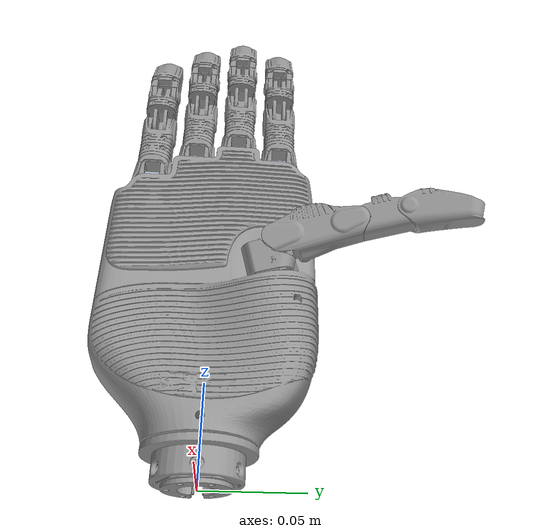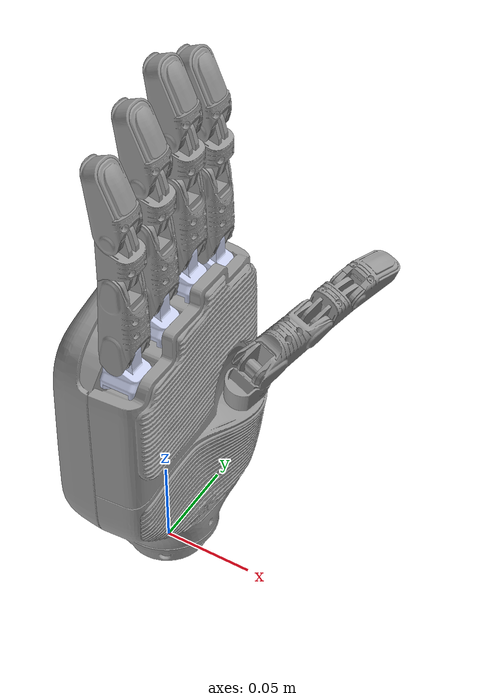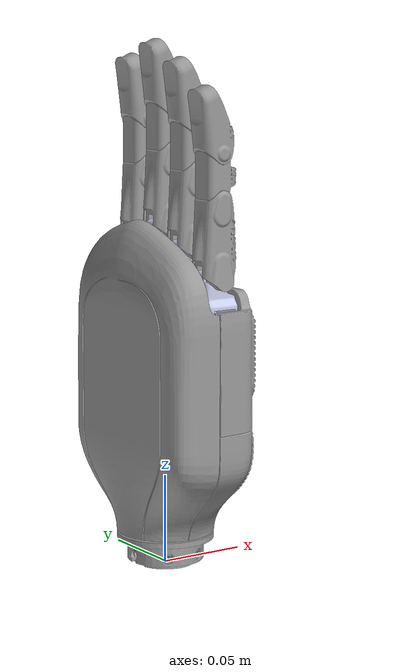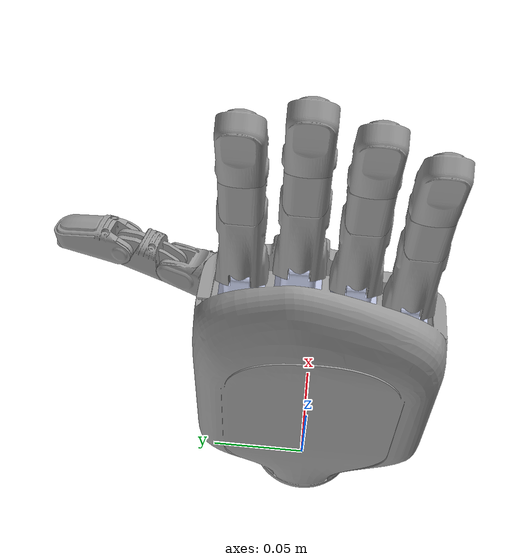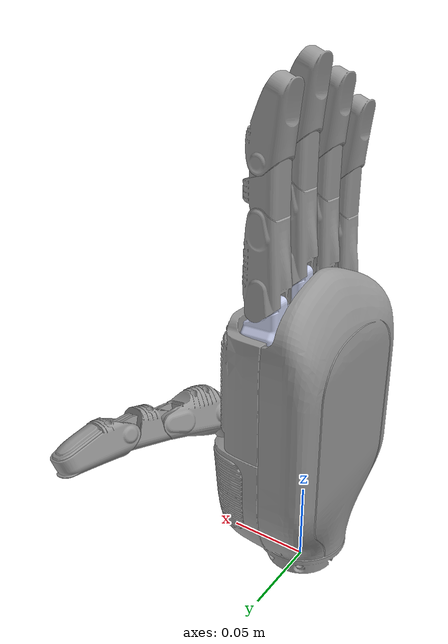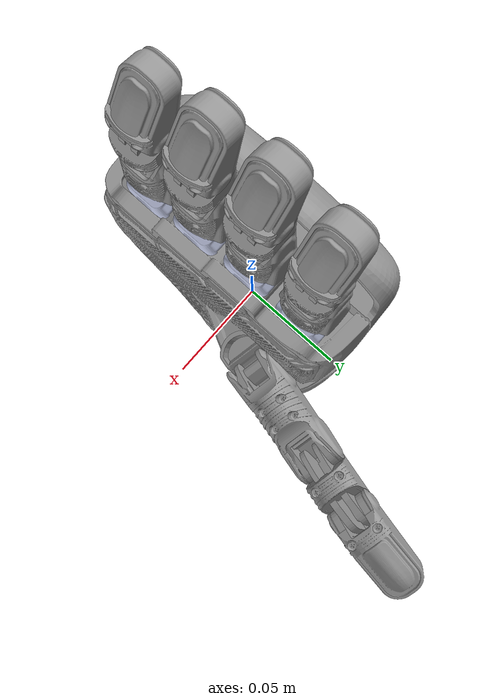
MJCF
<?xml version="1.0" encoding="utf-8"?>
<mujoco model="dexhand021_right_sim">
  <compiler angle="radian" meshdir="../../assets" autolimits="true"/>
  <size nkey="5"/>
  <option integrator="implicitfast" timestep="0.01" cone="elliptic" impratio="10"/>
  <default>
    <joint damping="0.05" armature="0.0002" frictionloss="0.01"/>
    <geom condim="3" solref="0.01 1" solimp="0.9 0.99 0.001" friction="1 0.005 0.0001"/>
    <equality solref="0.01 1" solimp="0.9 0.99 0.001"/>
  </default>
  <asset>
    <mesh name="rh_base" file="robot/dexhand021/right_hand_base.STL"/>
    <mesh name="rh_thbase" file="robot/dexhand021/r_f_link1_1.STL"/>
    <mesh name="rh_thproximal" file="robot/dexhand021/r_f_link1_2.STL"/>
    <mesh name="rh_thmiddle" file="robot/dexhand021/r_f_link1_3.STL"/>
    <mesh name="rh_thdistal" file="robot/dexhand021/r_f_link1_4.STL"/>
    <mesh name="rh_ffbase" file="robot/dexhand021/r_f_link2_1.STL"/>
    <mesh name="rh_ffproximal" file="robot/dexhand021/r_f_link2_2.STL"/>
    <mesh name="rh_ffmiddle" file="robot/dexhand021/r_f_link2_3.STL"/>
    <mesh name="rh_ffdistal" file="robot/dexhand021/r_f_link2_4.STL"/>
    <mesh name="rh_mfbase" file="robot/dexhand021/r_f_link3_1.STL"/>
    <mesh name="rh_mfproximal" file="robot/dexhand021/r_f_link3_2.STL"/>
    <mesh name="rh_mfmiddle" file="robot/dexhand021/r_f_link3_3.STL"/>
    <mesh name="rh_mfdistal" file="robot/dexhand021/r_f_link3_4.STL"/>
    <mesh name="rh_rfbase" file="robot/dexhand021/r_f_link4_1.STL"/>
    <mesh name="rh_rfproximal" file="robot/dexhand021/r_f_link4_2.STL"/>
    <mesh name="rh_rfmiddle" file="robot/dexhand021/r_f_link4_3.STL"/>
    <mesh name="rh_rfdistal" file="robot/dexhand021/r_f_link4_4.STL"/>
    <mesh name="rh_lfbase" file="robot/dexhand021/r_f_link5_1.STL"/>
    <mesh name="rh_lfproximal" file="robot/dexhand021/r_f_link5_2.STL"/>
    <mesh name="rh_lfmiddle" file="robot/dexhand021/r_f_link5_3.STL"/>
    <mesh name="rh_lfdistal" file="robot/dexhand021/r_f_link5_4.STL"/>

    <material name="shell-plastic" rgba="0.6 0.6 0.6 1" />
    <material name="joint-metal" rgba="0.79216 0.81961 0.93333 1" />
  </asset>
  <worldbody>
    <body name="rh_base">
      <geom type="mesh" contype="0" conaffinity="0" group="1" density="0" material="shell-plastic" mesh="rh_base"/>
      <body name="rh_thbase" pos="0.032783 0.023781 0.11211" quat="0.151551 -0.775385 -0.612635 0.0221215">
        <inertial pos="0.0019855 -0.00034962 0.013484" quat="0.71629 -0.0780372 -0.0535872 0.691351" mass="0.0055264" diaginertia="5.52348e-07 4.77971e-07 2.4806e-07"/>
        <joint name="rh_thj1" pos="0 0 0" axis="0 0 1" range="0 2.2" actuatorfrcrange="-10 10"/>
        <geom type="mesh" contype="0" conaffinity="0" group="1" density="0" material="shell-plastic" mesh="rh_thbase"/>
        <body name="rh_thproximal" pos="0.0083307 0 0" quat="0.707105 -0.707108 0 0">
          <inertial pos="0.021437 0.00017315 -0.0012982" quat="0.0127346 0.706496 -0.016911 0.7074" mass="0.012462" diaginertia="2.145e-06 2.07718e-06 7.76292e-07"/>
          <joint name="rh_thj2" pos="0 0 0" axis="0 0 1" range="0 1.3" actuatorfrcrange="-10 10"/>
          <geom type="mesh" contype="0" conaffinity="0" group="1" density="0" material="shell-plastic" mesh="rh_thproximal"/>
          <body name="rh_thmiddle" pos="0.043 0 0">
            <inertial pos="0.013455 -0.00070242 -0.0012928" quat="0.0204223 0.706783 -0.0204207 0.70684" mass="0.005726" diaginertia="4.7655e-07 4.47482e-07 2.54788e-07"/>
            <joint name="rh_thj3" pos="0 0 0" axis="0 0 1" range="0 1.3" actuatorfrcrange="-10 10"/>
            <geom type="mesh" contype="0" conaffinity="0" group="1" density="0" material="shell-plastic" mesh="rh_thmiddle"/>
            <body name="rh_thdistal" pos="0.025 0 0">
              <joint name="rh_thj4" pos="0 0 0" axis="0 0 1" range="0 1.3" actuatorfrcrange="-10 10"/>
              <geom type="mesh" contype="0" conaffinity="0" group="1" density="0" material="shell-plastic" mesh="rh_thdistal"/>
              <geom name="rh_thdistal_col" type="capsule" rgba="0 0 1.0 1" contype="1" conaffinity="1" group="3" size="0.0095" fromto="0.0 0 -0.001 0.027 -0.007 -0.001" condim="4"/>
            </body>
            <geom name="rh_thmiddle_col" type="capsule" rgba="0 0 1.0 1" contype="1" conaffinity="1" group="3" size="0.007" fromto="0.0125 0.003 -0.0045 0.0125 0.003 0.0023"/>
          </body>
          <geom name="rh_thproximal_col" type="capsule" rgba="0 0 1.0 1" contype="1" conaffinity="1" group="3" size="0.0095" fromto="0.0 0 0 0.03 0 -0.002"/>
        </body>
      </body>
      <body name="rh_ffbase" pos="0.006966 0.034912 0.1644" quat="0.707105 0 -0.707108 0">
        <inertial pos="0.007003 2.619e-09 0.00096933" quat="0.601863 0.371162 0.371162 0.601863" mass="0.0051273" diaginertia="3.9879e-07 3.4058e-07 2.5589e-07"/>
        <joint name="rh_ffj1" pos="0 0 0" axis="0 0 1" range="0 0.3" actuatorfrcrange="-10 10"/>
        <geom type="mesh" contype="0" conaffinity="0" group="1" density="0" material="joint-metal" mesh="rh_ffbase"/>
        <body name="rh_ffproximal" pos="0.017 0 0" quat="0.707105 -0.707108 0 0">
          <inertial pos="0.02116 -0.00059146 -2.1984e-06" quat="0.507863 0.503147 0.496172 0.492678" mass="0.011802" diaginertia="2.07728e-06 2.0592e-06 6.94909e-07"/>
          <joint name="rh_ffj2" pos="0 0 0" axis="0 0 1" range="0 1.3" actuatorfrcrange="-10 10"/>
          <geom type="mesh" contype="0" conaffinity="0" group="1" density="0" material="shell-plastic" mesh="rh_ffproximal"/>
          <body name="rh_ffmiddle" pos="0.043 0 0">
            <inertial pos="0.013455 -0.00070241 -3.5721e-07" quat="0.0204051 0.706783 -0.0204379 0.70684" mass="0.005726" diaginertia="4.7655e-07 4.47482e-07 2.54788e-07"/>
            <joint name="rh_ffj3" pos="0 0 0" axis="0 0 1" range="0 1.3" actuatorfrcrange="-10 10"/>
            <geom type="mesh" contype="0" conaffinity="0" group="1" density="0" material="shell-plastic" mesh="rh_ffmiddle"/>
            <body name="rh_ffdistal" pos="0.025 0 0">
              <joint name="rh_ffj4" pos="0 0 0" axis="0 0 1" range="0 1.3" actuatorfrcrange="-10 10"/>
              <geom type="mesh" contype="0" conaffinity="0" group="1" density="0" material="shell-plastic" mesh="rh_ffdistal"/>
              <geom name="rh_ffdistal_col" type="capsule" rgba="0 0 1.0 1" contype="1" conaffinity="1" group="3" size="0.0095" fromto="0.0 0 0 0.026 -0.007 0" condim="4"/>
            </body>
            <geom name="rh_ffmiddle_col" type="capsule" rgba="0 0 1.0 1" contype="1" conaffinity="1" group="3" size="0.007" fromto="0.012 0.003 -0.0035 0.012 0.003 0.0035"/>
          </body>
          <geom name="rh_ffproximal_col" type="capsule" rgba="0 0 1.0 1" contype="1" conaffinity="1" group="3" size="0.0095" fromto="0.005 0 0 0.03 0 0"/>
        </body>
      </body>
      <body name="rh_mfbase" pos="0.006966 0.010612 0.1734" quat="0.707105 0 -0.707108 0">
        <inertial pos="0.007003 2.619e-09 0.00096932" quat="0.601863 0.371162 0.371162 0.601863" mass="0.0051273" diaginertia="3.9879e-07 3.4058e-07 2.5589e-07"/>
        <geom type="mesh" contype="0" conaffinity="0" group="1" density="0" material="joint-metal" mesh="rh_mfbase"/>
        <body name="rh_mfproximal" pos="0.017 0 0" quat="0.707105 -0.707108 0 0">
          <inertial pos="0.02116 -0.00059146 -2.1984e-06" quat="0.507863 0.503147 0.496172 0.492678" mass="0.011802" diaginertia="2.07728e-06 2.0592e-06 6.94909e-07"/>
          <joint name="rh_mfj2" pos="0 0 0" axis="0 0 1" range="0 1.3" actuatorfrcrange="-10 10"/>
          <geom type="mesh" contype="0" conaffinity="0" group="1" density="0" material="shell-plastic" mesh="rh_mfproximal"/>
          <body name="rh_mfmiddle" pos="0.043 0 0">
            <inertial pos="0.013455 -0.00070241 -3.5721e-07" quat="0.0204051 0.706783 -0.0204379 0.70684" mass="0.005726" diaginertia="4.7655e-07 4.47482e-07 2.54788e-07"/>
            <joint name="rh_mfj3" pos="0 0 0" axis="0 0 1" range="0 1.3" actuatorfrcrange="-10 10"/>
            <geom type="mesh" contype="0" conaffinity="0" group="1" density="0" material="shell-plastic" mesh="rh_mfmiddle"/>
            <body name="rh_mfdistal" pos="0.025 0 0">
              <joint name="rh_mfj4" pos="0 0 0" axis="0 0 1" range="0 1.3" actuatorfrcrange="-10 10"/>
              <geom type="mesh" contype="0" conaffinity="0" group="1" density="0" material="shell-plastic" mesh="rh_mfdistal"/>
              <geom name="rh_mfdistal_col" type="capsule" rgba="0 0 1.0 1" contype="1" conaffinity="1" group="3" size="0.0095" fromto="0.0 0 0 0.026 -0.007 0" condim="4"/>
            </body>
            <geom name="rh_mfmiddle_col" type="capsule" rgba="0 0 1.0 1" contype="1" conaffinity="1" group="3" size="0.007" fromto="0.012 0.003 -0.0035 0.012 0.003 0.0035"/>
          </body>
          <geom name="rh_mfproximal_col" type="capsule" rgba="0 0 1.0 1" contype="1" conaffinity="1" group="3" size="0.0095" fromto="0.005 0 0 0.03 0 0"/>
        </body>
      </body>
      <body name="rh_rfbase" pos="0.006966 -0.013688 0.1644" quat="-2.59734e-06 0.707105 2.59735e-06 0.707108">
        <inertial pos="0.007003 -2.619e-09 -0.00096933" quat="0.371162 0.601863 0.601863 0.371162" mass="0.0051273" diaginertia="3.9879e-07 3.4058e-07 2.5589e-07"/>
        <joint name="rh_rfj1" pos="0 0 0" axis="0 0 1" range="0 0.3" actuatorfrcrange="-10 10"/>
        <geom type="mesh" contype="0" conaffinity="0" group="1" density="0" material="joint-metal" mesh="rh_rfbase"/>
        <body name="rh_rfproximal" pos="0.017 0 0" quat="0.707105 0.707108 0 0">
          <inertial pos="0.02116 -0.00059146 -2.1984e-06" quat="0.507863 0.503147 0.496172 0.492678" mass="0.011802" diaginertia="2.07728e-06 2.0592e-06 6.94909e-07"/>
          <joint name="rh_rfj2" pos="0 0 0" axis="0 0 1" range="0 1.3" actuatorfrcrange="-10 10"/>
          <geom type="mesh" contype="0" conaffinity="0" group="1" density="0" material="shell-plastic" mesh="rh_rfproximal"/>
          <body name="rh_rfmiddle" pos="0.043 0 0">
            <inertial pos="0.013455 -0.00070241 -3.572e-07" quat="0.0204051 0.706783 -0.0204379 0.70684" mass="0.005726" diaginertia="4.7655e-07 4.47482e-07 2.54788e-07"/>
            <joint name="rh_rfj3" pos="0 0 0" axis="0 0 1" range="0 1.3" actuatorfrcrange="-10 10"/>
            <geom type="mesh" contype="0" conaffinity="0" group="1" density="0" material="shell-plastic" mesh="rh_rfmiddle"/>
            <body name="rh_rfdistal" pos="0.025 0 0">
              <joint name="rh_rfj4" pos="0 0 0" axis="0 0 1" range="0 1.3" actuatorfrcrange="-10 10"/>
              <geom type="mesh" contype="0" conaffinity="0" group="1" density="0" material="shell-plastic" mesh="rh_rfdistal"/>
              <geom name="rh_rfdistal_col" type="capsule" rgba="0 0 1.0 1" contype="1" conaffinity="1" group="3" size="0.0095" fromto="0.0 0 0 0.026 -0.007 0" condim="4"/>
            </body>
            <geom name="rh_rfmiddle_col" type="capsule" rgba="0 0 1.0 1" contype="1" conaffinity="1" group="3" size="0.007" fromto="0.012 0.003 -0.0035 0.012 0.003 0.0035"/>
          </body>
          <geom name="rh_rfproximal_col" type="capsule" rgba="0 0 1.0 1" contype="1" conaffinity="1" group="3" size="0.0095" fromto="0.005 0 0 0.03 0 0"/>
        </body>
      </body>
      <body name="rh_lfbase" pos="0.006966 -0.037988 0.1504" quat="-2.59734e-06 0.707105 2.59735e-06 0.707108">
        <inertial pos="0.0080017 1.8833e-05 -0.0015869" quat="0.366604 0.60097 0.60931 0.364936" mass="0.003769" diaginertia="3.9885e-07 3.46938e-07 2.19942e-07"/>
        <joint name="rh_lfj1" pos="0 0 0" axis="0 0 1" range="0 0.6" actuatorfrcrange="-10 10"/>
        <geom type="mesh" contype="0" conaffinity="0" group="1" density="0" material="joint-metal" mesh="rh_lfbase"/>
        <body name="rh_lfproximal" pos="0.017 0 0" quat="0.707105 0.707108 0 0">
          <inertial pos="0.02116 -0.00059146 -2.1978e-06" quat="0.507864 0.503146 0.496173 0.492678" mass="0.011802" diaginertia="2.07728e-06 2.0592e-06 6.94909e-07"/>
          <joint name="rh_lfj2" pos="0 0 0" axis="0 0 1" range="0 1.3" actuatorfrcrange="-10 10"/>
          <geom type="mesh" contype="0" conaffinity="0" group="1" density="0" material="shell-plastic" mesh="rh_lfproximal"/>
          <body name="rh_lfmiddle" pos="0.043 0 0">
            <inertial pos="0.013455 -0.00070241 -3.5727e-07" quat="0.0204052 0.706783 -0.0204379 0.70684" mass="0.005726" diaginertia="4.7655e-07 4.47482e-07 2.54788e-07"/>
            <joint name="rh_lfj3" pos="0 0 0" axis="0 0 1" range="0 1.3" actuatorfrcrange="-10 10"/>
            <geom type="mesh" contype="0" conaffinity="0" group="1" density="0" material="shell-plastic" mesh="rh_lfmiddle"/>
            <body name="rh_lfdistal" pos="0.025 0 0">
              <joint name="rh_lfj4" pos="0 0 0" axis="0 0 1" range="0 1.3" actuatorfrcrange="-10 10"/>
              <geom type="mesh" contype="0" conaffinity="0" group="1" density="0" material="shell-plastic" mesh="rh_lfdistal"/>
              <geom name="rh_lfdistal_col" type="capsule" rgba="0 0 1.0 1" contype="1" conaffinity="1" group="3" size="0.0095" fromto="0.0 0 0 0.026 -0.007 0" condim="4"/>
            </body>
            <geom name="rh_lfmiddle_col" type="capsule" rgba="0 0 1.0 1" contype="1" conaffinity="1" group="3" size="0.007" fromto="0.012 0.003 -0.0035 0.012 0.003 0.0035"/>
          </body>
          <geom name="rh_lfproximal_col" type="capsule" rgba="0 0 1.0 1" contype="1" conaffinity="1" group="3" size="0.0095" fromto="0.005 0 0 0.03 0 0"/>
        </body>
      </body>
      <geom name="rh_base_col" type="box" contype="1" conaffinity="1" group="3" size="0.0273 0.05 0.05" pos="-0.0022 0 0.11" rgba="0 0 1.0 1"/>
      <geom name="rh_base_pad1" type="box" contype="1" conaffinity="1" group="3" size="0.0273 0.038 0.01" pos="-0.0022 0.012 0.17" rgba="0 0 1.0 1"/>
      <site name="rh_base" pos="-0.0022 0 0.11" size="0.01" type="sphere"/>
      <site name="rh_precision" pos="0.07 0.0 0.18" quat="0 1 0 1" group="4"/>
      <site name="rh_power" pos="0.1 0.02 0.16" quat="0 0 1 1" group="4"/>
    </body>
  </worldbody>

  <contact>
    <exclude body1="rh_base" body2="rh_ffproximal"/>
    <exclude body1="rh_base" body2="rh_mfproximal"/>
    <exclude body1="rh_base" body2="rh_rfproximal"/>
    <exclude body1="rh_base" body2="rh_lfproximal"/>
  </contact>

  <tendon>
    <fixed name="rh_fft1">
      <joint joint="rh_ffj1" coef="0.16666666667"/>
      <joint joint="rh_rfj1" coef="0.16666666667"/>
      <joint joint="rh_lfj1" coef="0.33333333333"/>
    </fixed>
    <fixed name="rh_tht3">
      <joint joint="rh_thj3" coef="0.5"/>
      <joint joint="rh_thj4" coef="0.5"/>
    </fixed>
    <fixed name="rh_fft3">
      <joint joint="rh_ffj3" coef="0.5"/>
      <joint joint="rh_ffj4" coef="0.5"/>
    </fixed>
    <fixed name="rh_mft3">
      <joint joint="rh_mfj3" coef="0.5"/>
      <joint joint="rh_mfj4" coef="0.5"/>
    </fixed>
    <fixed name="rh_rft3">
      <joint joint="rh_rfj3" coef="0.5"/>
      <joint joint="rh_rfj4" coef="0.5"/>
    </fixed>
    <fixed name="rh_lft3">
      <joint joint="rh_lfj3" coef="0.5"/>
      <joint joint="rh_lfj4" coef="0.5"/>
    </fixed>
  </tendon>

  <equality>
    <joint joint1="rh_rfj1" joint2="rh_ffj1" polycoef="0 1"/>
    <joint joint1="rh_lfj1" joint2="rh_ffj1" polycoef="0 2"/>
    <joint joint1="rh_thj4" joint2="rh_thj3" polycoef="0 1"/>
    <joint joint1="rh_ffj4" joint2="rh_ffj3" polycoef="0 1"/>
    <joint joint1="rh_mfj4" joint2="rh_mfj3" polycoef="0 1"/>
    <joint joint1="rh_rfj4" joint2="rh_rfj3" polycoef="0 1"/>
    <joint joint1="rh_lfj4" joint2="rh_lfj3" polycoef="0 1"/>
  </equality>

  <actuator>
    <position name="rh_thj1"  joint="rh_thj1" kp="1" kv="0.05" ctrlrange="0 2.2" forcerange="-10 10"/>
    <position name="rh_thj2"  joint="rh_thj2" kp="1" kv="0.01" ctrlrange="0 1.3" forcerange="-10 10"/>
    <position name="rh_thj3"  joint="rh_thj3" kp="1" kv="0.01" ctrlrange="0 1.3" forcerange="-10 10"/>
    <position name="rh_fft1" tendon="rh_fft1" kp="4" kv="0.05" ctrlrange="0 0.3" forcerange="-10 10"/>
    <position name="rh_ffj2"  joint="rh_ffj2" kp="1" kv="0.01" ctrlrange="0 1.3" forcerange="-10 10"/>
    <position name="rh_fft3" tendon="rh_fft3" kp="1" kv="0.01" ctrlrange="0 1.3" forcerange="-10 10"/>
    <position name="rh_mfj2"  joint="rh_mfj2" kp="1" kv="0.01" ctrlrange="0 1.3" forcerange="-10 10"/>
    <position name="rh_mft3" tendon="rh_mft3" kp="1" kv="0.01" ctrlrange="0 1.3" forcerange="-10 10"/>
    <position name="rh_rfj2"  joint="rh_rfj2" kp="1" kv="0.01" ctrlrange="0 1.3" forcerange="-10 10"/>
    <position name="rh_rft3" tendon="rh_rft3" kp="1" kv="0.01" ctrlrange="0 1.3" forcerange="-10 10"/>
    <position name="rh_lfj2"  joint="rh_lfj2" kp="1" kv="0.01" ctrlrange="0 1.3" forcerange="-10 10"/>
    <position name="rh_lft3" tendon="rh_lft3" kp="1" kv="0.01" ctrlrange="0 1.3" forcerange="-10 10"/>
  </actuator>

</mujoco>
